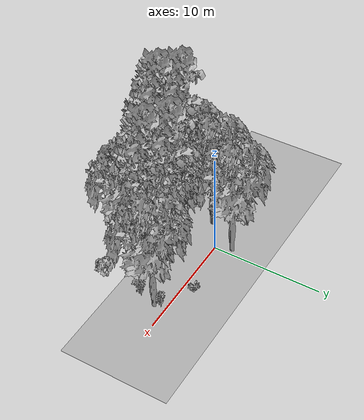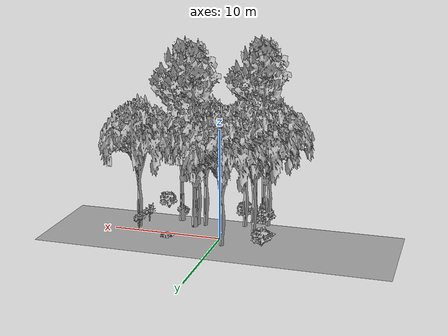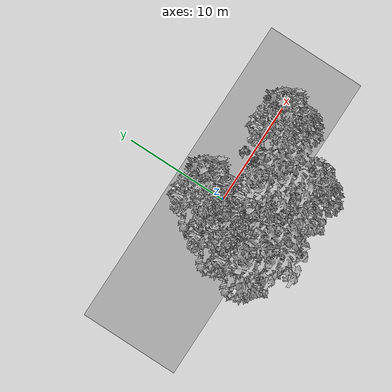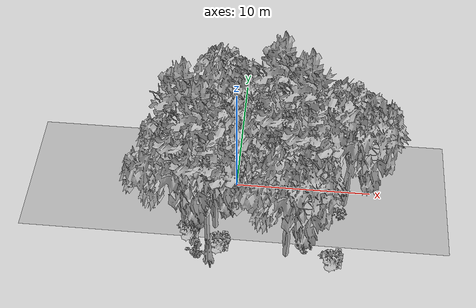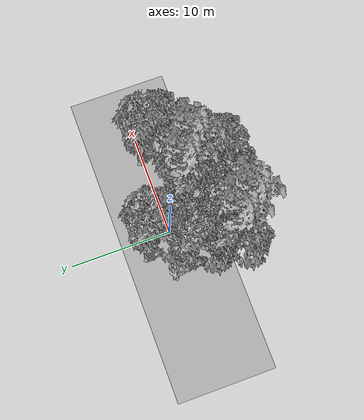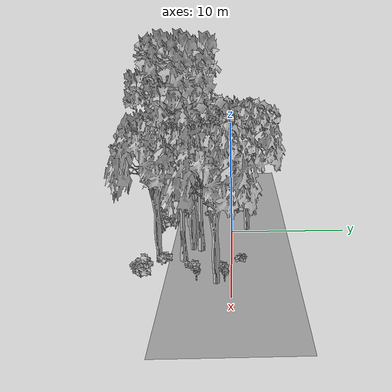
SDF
<sdf version="1.7">
 <world name="default">
  <model name="ground_plane">
   <static>1</static>
   <link name="link">
    <collision name="collision">
     <geometry><plane><normal>0 0 1</normal><size>100 100</size></plane></geometry>
     <surface><contact><ode><min_depth>0.01</min_depth><max_vel>0</max_vel></ode></contact></surface>
    </collision>
    <visual name="grass">
     <cast_shadows>0</cast_shadows>
     <geometry>
      <mesh>
       <scale>0.5814285714285714 0.18142857142857144 0.1</scale>
       <uri>file://grass_plane/meshes/grass_plane.dae</uri>
      </mesh>
     </geometry>
    </visual>
   </link>
  </model>
  <model name="Tree 14">
   <static>1</static>
   <pose>-1.332197806563535 -3.850424063560032 0 1.57079 -0 0</pose>
   <link name="link">
    <collision name="collision">
     <geometry><mesh><scale>3.5 5 3.5</scale><uri>model://tree_2/meshes/tree_2.obj</uri></mesh></geometry>
    </collision>
    <visual name="visual">
     <geometry><mesh><scale>3.5 5 3.5</scale><uri>model://tree_2/meshes/tree_2.obj</uri></mesh></geometry>
    </visual>
   </link>
  </model>
  <model name="Tree 167">
   <static>1</static>
   <pose>2.235963855538742 -3.089667965372424 0 1.57079 -0 0</pose>
   <link name="link">
    <collision name="collision">
     <geometry><mesh><scale>3.5 5 3.5</scale><uri>model://tree_2/meshes/tree_2.obj</uri></mesh></geometry>
    </collision>
    <visual name="visual">
     <geometry><mesh><scale>3.5 5 3.5</scale><uri>model://tree_2/meshes/tree_2.obj</uri></mesh></geometry>
    </visual>
   </link>
  </model>
  <model name="Tree 169">
   <static>1</static>
   <pose>-0.636866795938893 1.3534708765960772 0 1.57079 -0 0</pose>
   <link name="link">
    <collision name="collision">
     <geometry><mesh><scale>3.5 5 3.5</scale><uri>model://tree_2/meshes/tree_2.obj</uri></mesh></geometry>
    </collision>
    <visual name="visual">
     <geometry><mesh><scale>3.5 5 3.5</scale><uri>model://tree_2/meshes/tree_2.obj</uri></mesh></geometry>
    </visual>
   </link>
  </model>
  <model name="Tree 185">
   <static>1</static>
   <pose>2.970082245994284 -3.154210945035958 0 1.57079 -0 0</pose>
   <link name="link">
    <collision name="collision">
     <geometry><mesh><scale>3.5 5 3.5</scale><uri>model://tree_2/meshes/tree_2.obj</uri></mesh></geometry>
    </collision>
    <visual name="visual">
     <geometry><mesh><scale>3.5 5 3.5</scale><uri>model://tree_2/meshes/tree_2.obj</uri></mesh></geometry>
    </visual>
   </link>
  </model>
  <model name="Tree 207">
   <static>1</static>
   <pose>4.8703405767369645 -3.756123161624977 0 1.57079 -0 0</pose>
   <link name="link">
    <collision name="collision">
     <geometry><mesh><scale>3.5 5 3.5</scale><uri>model://tree_9/meshes/tree_9.obj</uri></mesh></geometry>
    </collision>
    <visual name="visual">
     <geometry><mesh><scale>3.5 5 3.5</scale><uri>model://tree_9/meshes/tree_9.obj</uri></mesh></geometry>
    </visual>
   </link>
  </model>
  <model name="Tree 286">
   <static>1</static>
   <pose>3.219457647164461 -2.475479259350079 0 1.57079 -0 0</pose>
   <link name="link">
    <collision name="collision">
     <geometry><mesh><scale>3.5 5 3.5</scale><uri>model://tree_9/meshes/tree_9.obj</uri></mesh></geometry>
    </collision>
    <visual name="visual">
     <geometry><mesh><scale>3.5 5 3.5</scale><uri>model://tree_9/meshes/tree_9.obj</uri></mesh></geometry>
    </visual>
   </link>
  </model>
  <model name="Tree 307">
   <static>1</static>
   <pose>-2.6770881573438032 -1.7753067012856967 0 1.57079 -0 0</pose>
   <link name="link">
    <collision name="collision">
     <geometry><mesh><scale>3.5 5 3.5</scale><uri>model://tree_2/meshes/tree_2.obj</uri></mesh></geometry>
    </collision>
    <visual name="visual">
     <geometry><mesh><scale>3.5 5 3.5</scale><uri>model://tree_2/meshes/tree_2.obj</uri></mesh></geometry>
    </visual>
   </link>
  </model>
  <model name="Tree 322">
   <static>1</static>
   <pose>-1.456249529015011 -6.5718061140558 0 1.57079 -0 0</pose>
   <link name="link">
    <collision name="collision">
     <geometry><mesh><scale>3.5 5 3.5</scale><uri>model://tree_9/meshes/tree_9.obj</uri></mesh></geometry>
    </collision>
    <visual name="visual">
     <geometry><mesh><scale>3.5 5 3.5</scale><uri>model://tree_9/meshes/tree_9.obj</uri></mesh></geometry>
    </visual>
   </link>
  </model>
  <model name="Tree 365">
   <static>1</static>
   <pose>3.916969539580137 -5.834110430413274 0 1.57079 -0 0</pose>
   <link name="link">
    <collision name="collision">
     <geometry><mesh><scale>3.5 5 3.5</scale><uri>model://tree_2/meshes/tree_2.obj</uri></mesh></geometry>
    </collision>
    <visual name="visual">
     <geometry><mesh><scale>3.5 5 3.5</scale><uri>model://tree_2/meshes/tree_2.obj</uri></mesh></geometry>
    </visual>
   </link>
  </model>
  <model name="Tree 374">
   <static>1</static>
   <pose>7.999951921660667 -1.107597998515347 0 1.57079 -0 0</pose>
   <link name="link">
    <collision name="collision">
     <geometry><mesh><scale>3.5 5 3.5</scale><uri>model://tree_2/meshes/tree_2.obj</uri></mesh></geometry>
    </collision>
    <visual name="visual">
     <geometry><mesh><scale>3.5 5 3.5</scale><uri>model://tree_2/meshes/tree_2.obj</uri></mesh></geometry>
    </visual>
   </link>
  </model>
  <model name="Tree 390">
   <static>1</static>
   <pose>-2.6464380194887838 -5.080686723824845 0 1.57079 -0 0</pose>
   <link name="link">
    <collision name="collision">
     <geometry><mesh><scale>3.5 5 3.5</scale><uri>model://tree_9/meshes/tree_9.obj</uri></mesh></geometry>
    </collision>
    <visual name="visual">
     <geometry><mesh><scale>3.5 5 3.5</scale><uri>model://tree_9/meshes/tree_9.obj</uri></mesh></geometry>
    </visual>
   </link>
  </model>
  <model name="Tree 393">
   <static>1</static>
   <pose>-3.323436730410961 -4.694089446525195 0 1.57079 -0 0</pose>
   <link name="link">
    <collision name="collision">
     <geometry><mesh><scale>3.5 5 3.5</scale><uri>model://tree_2/meshes/tree_2.obj</uri></mesh></geometry>
    </collision>
    <visual name="visual">
     <geometry><mesh><scale>3.5 5 3.5</scale><uri>model://tree_2/meshes/tree_2.obj</uri></mesh></geometry>
    </visual>
   </link>
  </model>
  <model name="Bush 58">
   <static>1</static>
   <pose>-3.842855109092568 -2.098845480912514 0 1.57079 -0 0</pose>
   <link name="link">
    <collision name="collision">
     <geometry><mesh><scale>2 2 2</scale><uri>model://bush_2/meshes/bush_2.obj</uri></mesh></geometry>
     <surface><contact><collide_without_contact>false</collide_without_contact></contact></surface>
    </collision>
    <visual name="visual">
     <geometry><mesh><scale>2 2 2</scale><uri>model://bush_2/meshes/bush_2.obj</uri></mesh></geometry>
    </visual>
   </link>
  </model>
  <model name="Bush 63">
   <static>1</static>
   <pose>-2.334839867847343 -6.610965161656498 0 1.57079 -0 0</pose>
   <link name="link">
    <collision name="collision">
     <geometry><mesh><scale>2 2 2</scale><uri>model://bush_4/meshes/bush_4.obj</uri></mesh></geometry>
     <surface><contact><collide_without_contact>false</collide_without_contact></contact></surface>
    </collision>
    <visual name="visual">
     <geometry><mesh><scale>2 2 2</scale><uri>model://bush_4/meshes/bush_4.obj</uri></mesh></geometry>
    </visual>
   </link>
  </model>
  <model name="Bush 94">
   <static>1</static>
   <pose>4.779005716677432 0.7337988800028725 0 1.57079 -0 0</pose>
   <link name="link">
    <collision name="collision">
     <geometry><mesh><scale>2 2 2</scale><uri>model://bush_2/meshes/bush_2.obj</uri></mesh></geometry>
     <surface><contact><collide_without_contact>false</collide_without_contact></contact></surface>
    </collision>
    <visual name="visual">
     <geometry><mesh><scale>2 2 2</scale><uri>model://bush_2/meshes/bush_2.obj</uri></mesh></geometry>
    </visual>
   </link>
  </model>
  <model name="Bush 194">
   <static>1</static>
   <pose>5.291774895044327 -5.162665626087895 0 1.57079 -0 0</pose>
   <link name="link">
    <collision name="collision">
     <geometry><mesh><scale>2 2 2</scale><uri>model://bush_3/meshes/bush_3.obj</uri></mesh></geometry>
     <surface><contact><collide_without_contact>false</collide_without_contact></contact></surface>
    </collision>
    <visual name="visual">
     <geometry><mesh><scale>2 2 2</scale><uri>model://bush_3/meshes/bush_3.obj</uri></mesh></geometry>
    </visual>
   </link>
  </model>
  <model name="Bush 217">
   <static>1</static>
   <pose>7.727525467240405 -2.5686732334588083 0 1.57079 -0 0</pose>
   <link name="link">
    <collision name="collision">
     <geometry><mesh><scale>2 2 2</scale><uri>model://bush_5/meshes/bush_5.obj</uri></mesh></geometry>
     <surface><contact><collide_without_contact>false</collide_without_contact></contact></surface>
    </collision>
    <visual name="visual">
     <geometry><mesh><scale>2 2 2</scale><uri>model://bush_5/meshes/bush_5.obj</uri></mesh></geometry>
    </visual>
   </link>
  </model>
  <model name="Bush 218">
   <static>1</static>
   <pose>7.949809604906825 -0.5040501677495257 0 1.57079 -0 0</pose>
   <link name="link">
    <collision name="collision">
     <geometry><mesh><scale>2 2 2</scale><uri>model://bush_5/meshes/bush_5.obj</uri></mesh></geometry>
     <surface><contact><collide_without_contact>false</collide_without_contact></contact></surface>
    </collision>
    <visual name="visual">
     <geometry><mesh><scale>2 2 2</scale><uri>model://bush_5/meshes/bush_5.obj</uri></mesh></geometry>
    </visual>
   </link>
  </model>
  <model name="Bush 231">
   <static>1</static>
   <pose>7.234590185041597 -6.696607501776192 0 1.57079 -0 0</pose>
   <link name="link">
    <collision name="collision">
     <geometry><mesh><scale>2 2 2</scale><uri>model://bush_1/meshes/bush_1.obj</uri></mesh></geometry>
     <surface><contact><collide_without_contact>false</collide_without_contact></contact></surface>
    </collision>
    <visual name="visual">
     <geometry><mesh><scale>2 2 2</scale><uri>model://bush_1/meshes/bush_1.obj</uri></mesh></geometry>
    </visual>
   </link>
  </model>
  <model name="Bush 247">
   <static>1</static>
   <pose>-0.774009950667768 -5.954604654881734 0 1.57079 -0 0</pose>
   <link name="link">
    <collision name="collision">
     <geometry><mesh><scale>2 2 2</scale><uri>model://bush_1/meshes/bush_1.obj</uri></mesh></geometry>
     <surface><contact><collide_without_contact>false</collide_without_contact></contact></surface>
    </collision>
    <visual name="visual">
     <geometry><mesh><scale>2 2 2</scale><uri>model://bush_1/meshes/bush_1.obj</uri></mesh></geometry>
    </visual>
   </link>
  </model>
  <model name="Bush 280">
   <static>1</static>
   <pose>-2.987019899694431 -5.063542512012216 0 1.57079 -0 0</pose>
   <link name="link">
    <collision name="collision">
     <geometry><mesh><scale>2 2 2</scale><uri>model://bush_1/meshes/bush_1.obj</uri></mesh></geometry>
     <surface><contact><collide_without_contact>false</collide_without_contact></contact></surface>
    </collision>
    <visual name="visual">
     <geometry><mesh><scale>2 2 2</scale><uri>model://bush_1/meshes/bush_1.obj</uri></mesh></geometry>
    </visual>
   </link>
  </model>
  <model name="Bush 310">
   <static>1</static>
   <pose>-3.9425051357518583 0.5279658429440577 0 1.57079 -0 0</pose>
   <link name="link">
    <collision name="collision">
     <geometry><mesh><scale>2 2 2</scale><uri>model://bush_1/meshes/bush_1.obj</uri></mesh></geometry>
     <surface><contact><collide_without_contact>false</collide_without_contact></contact></surface>
    </collision>
    <visual name="visual">
     <geometry><mesh><scale>2 2 2</scale><uri>model://bush_1/meshes/bush_1.obj</uri></mesh></geometry>
    </visual>
   </link>
  </model>
 </world>
</sdf>
